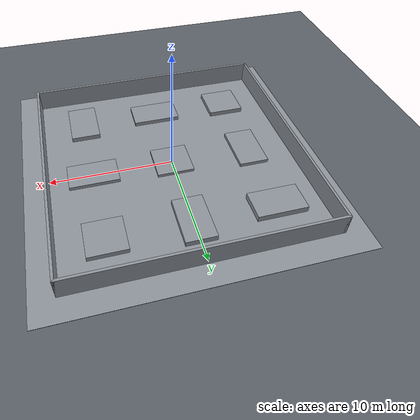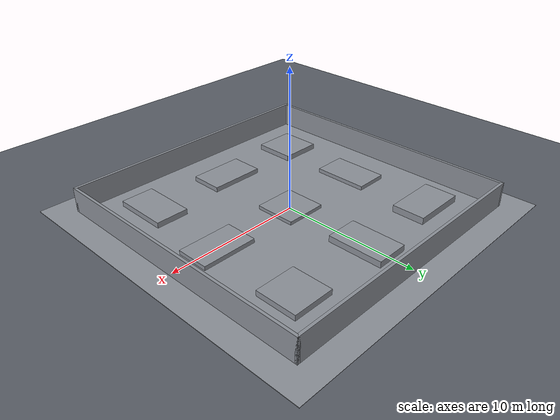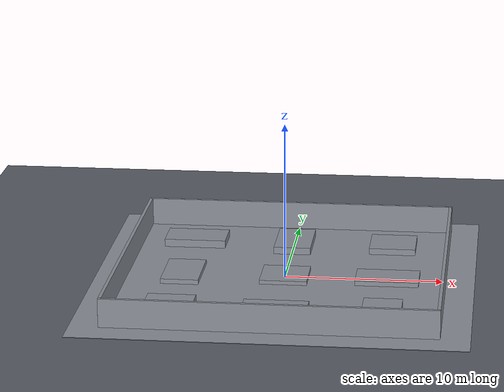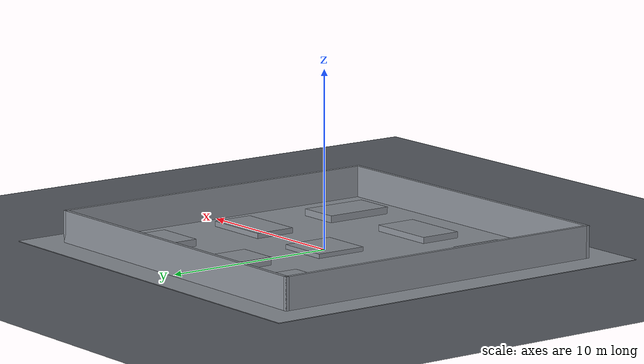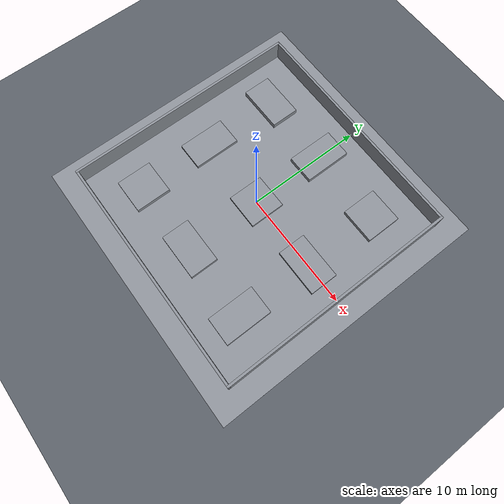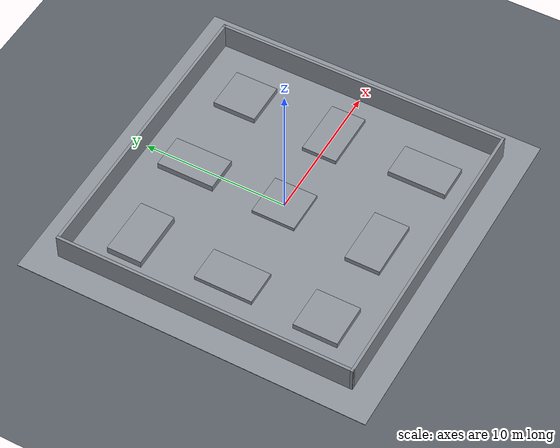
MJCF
<!-- Generated by robot_lab_maps/tools/gen_mjcf_worlds.py from
     maps/terrain_rough/worlds/terrain_rough.world - do not edit by hand. -->
<mujoco model="terrain_rough">
  <option gravity="0 0 -9.81" />
  <compiler angle="radian" />
  <worldbody>
    <geom type="plane" size="100 100 0.1" contype="0" conaffinity="0" rgba="0.35 0.37 0.4 1" />
    <geom pos="0 0 -0.05" quat="1 0 0 0" rgba="0.55 0.57 0.6 1" type="box" size="12 12 0.05" />
    <geom pos="0 -10.1 0.9" quat="1 0 0 0" rgba="0.55 0.57 0.6 1" type="box" size="10.2 0.1 0.9" />
    <geom pos="0 10.1 0.9" quat="1 0 0 0" rgba="0.55 0.57 0.6 1" type="box" size="10.2 0.1 0.9" />
    <geom pos="-10.1 0 0.9" quat="1 0 0 0" rgba="0.55 0.57 0.6 1" type="box" size="0.1 10.2 0.9" />
    <geom pos="10.1 0 0.9" quat="1 0 0 0" rgba="0.55 0.57 0.6 1" type="box" size="0.1 10.2 0.9" />
    <geom pos="-6.5 -6.5 0.2" quat="1 0 0 0" rgba="0.55 0.57 0.6 1" type="box" size="1.5 1.5 0.2" />
    <geom pos="-6.5 0 0.15" quat="1 0 0 0" rgba="0.55 0.57 0.6 1" type="box" size="1.2 2 0.15" />
    <geom pos="-6.5 6.5 0.25" quat="1 0 0 0" rgba="0.55 0.57 0.6 1" type="box" size="2 1.2 0.25" />
    <geom pos="0 -6.5 0.175" quat="1 0 0 0" rgba="0.55 0.57 0.6 1" type="box" size="2 1.2 0.175" />
    <geom pos="0 0 0.125" quat="1 0 0 0" rgba="0.55 0.57 0.6 1" type="box" size="1.5 1.5 0.125" />
    <geom pos="0 6.5 0.225" quat="1 0 0 0" rgba="0.55 0.57 0.6 1" type="box" size="1.2 2 0.225" />
    <geom pos="6.5 -6.5 0.2" quat="1 0 0 0" rgba="0.55 0.57 0.6 1" type="box" size="1.2 2 0.2" />
    <geom pos="6.5 0 0.15" quat="1 0 0 0" rgba="0.55 0.57 0.6 1" type="box" size="2 1.2 0.15" />
    <geom pos="6.5 6.5 0.2" quat="1 0 0 0" rgba="0.55 0.57 0.6 1" type="box" size="1.5 1.5 0.2" />
    <light diffuse="0.8 0.8 0.8" pos="0 0 10" dir="0 0 -1" castshadow="true" />
    <light diffuse="0.3 0.3 0.3" pos="0 -6 6" dir="0 1 -1" />
  </worldbody>
</mujoco>
